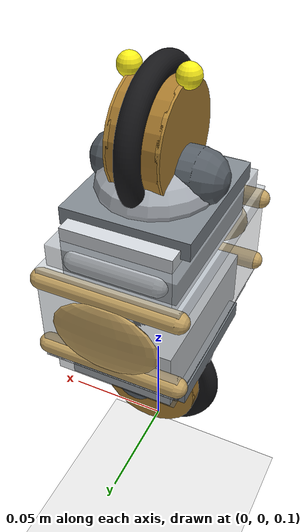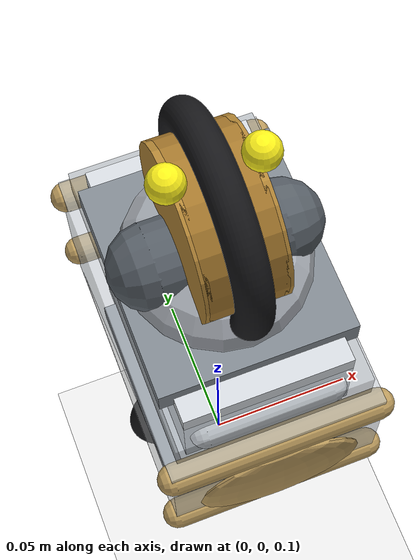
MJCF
<mujoco model="jumpwheelbot">
  <compiler angle="radian" coordinate="local"/>
  <option timestep="0.002" gravity="0 0 -9.81" integrator="RK4"
          cone="elliptic" iterations="100" tolerance="1e-10"/>

  <default>
    <geom rgba="0.7 0.7 0.75 1"/>
    <joint damping="0.001"/>
    <motor ctrllimited="true" ctrlrange="-0.5 0.5"/>

    <default class="terrain_collision">
      <geom priority="0" friction="0.80 0.0002 0.0001" condim="6"
            solref="0.008 1.0" solimp="0.90 0.98 0.001"/>
    </default>
    <default class="body_collision">
      <geom priority="1" friction="0.45 0.0001 0.0001" condim="6"
            solref="0.004 1.0" solimp="0.95 0.99 0.0005"/>
    </default>
    <default class="pitch_rocker_collision">
      <geom priority="2" friction="1.20 0.0005 0.0003" condim="6"
            solref="0.004 1.0" solimp="0.95 0.99 0.0005"/>
    </default>
    <default class="tyre_collision">
      <geom priority="2" friction="1.20 0.0005 0.0003" condim="6"
            solref="0.006 0.8" solimp="0.90 0.98 0.001"/>
    </default>
    <default class="visual">
      <geom contype="0" conaffinity="0" density="0" group="2"/>
    </default>
  </default>

  <asset>
    <mesh name="wheel_y_tire_mesh" file="wheel_tire.obj"/>
  </asset>

  <worldbody>
    <light pos="0 0 2"/>
    <geom name="floor" class="terrain_collision" type="plane" size="2 2 0.1" rgba="0.9 0.9 0.9 1"/>
    <body name="demo_obstacle_body" mocap="true" pos="0 3 -1"><geom name="demo_obstacle" class="terrain_collision" type="box" size="0.012 0.18 0.018" rgba="0.95 0.38 0.16 0" contype="0" conaffinity="0"/></body>
    <body name="demo_feature_1_body" mocap="true" pos="0 3 -1"><geom name="demo_feature_1" class="terrain_collision" type="box" size="0.024 0.18 0.024" rgba="0.95 0.38 0.16 0" contype="0" conaffinity="0"/></body>
    <body name="demo_feature_2_body" mocap="true" pos="0 3 -1"><geom name="demo_feature_2" class="terrain_collision" type="box" size="0.024 0.18 0.024" rgba="0.16 0.55 0.95 0" contype="0" conaffinity="0"/></body>
    <body name="demo_feature_3_body" mocap="true" pos="0 3 -1"><geom name="demo_feature_3" class="terrain_collision" type="box" size="0.024 0.18 0.024" rgba="0.28 0.78 0.38 0" contype="0" conaffinity="0"/></body>

    <body name="wheelbot" pos="0 0 0.2">
      <freejoint/>
      <geom name="unified_body_core" class="visual" type="box" pos="0 0 0" size="0.026 0.042 0.030" rgba="0.78 0.80 0.83 0.86"/>
      <geom name="unified_housing_shell" class="visual" type="box" pos="0 0 0" size="0.031 0.048 0.024" rgba="0.70 0.73 0.76 0.55"/>
      <geom name="central_roll_rocker_left_visual" class="visual" type="ellipsoid" pos="0 0.050 0" size="0.024 0.003 0.017" rgba="0.76 0.63 0.38 0.92"/>
      <geom name="central_roll_rocker_right_visual" class="visual" type="ellipsoid" pos="0 -0.050 0" size="0.024 0.003 0.017" rgba="0.76 0.63 0.38 0.92"/>

      <body name="wheel_x_end" pos="0 0 0">
        <joint name="q_jump" type="slide" axis="0 0 -1" limited="true" range="0 0.030" damping="1.0772" stiffness="6000" springref="0" armature="0" solreflimit="-218023 -88.5" solimplimit="0.95 0.99 0.001"/>
        <inertial pos="0 0 0.014" mass="0.215" diaginertia="0.000179 0.000179 0.000131"/>
        <geom name="upper_body_collision" class="body_collision" type="box" pos="0 0 0.018" size="0.026 0.030 0.014" density="0" rgba="0 0 0 0" group="3"/>
        <geom name="upper_roll_rocker_left" class="body_collision" type="capsule" fromto="-0.030 0.046 0.018 0.030 0.046 0.018" size="0.0045" density="0" rgba="0.76 0.63 0.38 0.95"/>
        <geom name="upper_roll_rocker_right" class="body_collision" type="capsule" fromto="-0.030 -0.046 0.018 0.030 -0.046 0.018" size="0.0045" density="0" rgba="0.76 0.63 0.38 0.95"/>
        <geom name="upper_pitch_rocker_front" class="pitch_rocker_collision" type="capsule" fromto="0.034 -0.036 0.018 0.034 0.036 0.018" size="0.0045" density="0" group="3" rgba="0.62 0.65 0.68 0.65"/>
        <geom name="upper_pitch_rocker_back" class="pitch_rocker_collision" type="capsule" fromto="-0.034 -0.036 0.018 -0.034 0.036 0.018" size="0.0045" density="0" group="3" rgba="0.62 0.65 0.68 0.65"/>
        <geom name="upper_body_core" class="visual" type="box" pos="0 0 0.026" size="0.024 0.039 0.014" rgba="0.82 0.84 0.86 0.92"/>
        <geom name="upper_housing_shell" class="visual" type="box" pos="0 0 0.022" size="0.028 0.044 0.012" rgba="0.58 0.61 0.64 0.55"/>
        <geom name="housing_top_front" class="visual" type="capsule" fromto="-0.018 0.039 0.026 0.018 0.039 0.026" size="0.0045" rgba="0.9 0.91 0.92 1"/>
        <geom name="housing_top_back" class="visual" type="capsule" fromto="-0.018 -0.039 0.026 0.018 -0.039 0.026" size="0.0045" rgba="0.9 0.91 0.92 1"/>
        <geom name="sliding_piston_core" class="visual" type="box" pos="0 0 0.004" size="0.015 0.017 0.030" rgba="0.30 0.33 0.36 0.82"/>
        <geom name="sliding_piston_guide_left" class="visual" type="capsule" fromto="-0.014 0 -0.018 -0.014 0 0.024" size="0.002" rgba="0.16 0.18 0.20 0.26"/>
        <geom name="sliding_piston_guide_right" class="visual" type="capsule" fromto="0.014 0 -0.018 0.014 0 0.024" size="0.002" rgba="0.16 0.18 0.20 0.26"/>
        <geom name="upper_actuator_collar" class="visual" type="box" pos="0 0 0.040" size="0.028 0.032 0.004" rgba="0.50 0.53 0.56 1"/>
        <geom name="wheel_x_motor_bridge" class="visual" type="capsule" fromto="-0.018 0 0.052 0.018 0 0.052" size="0.012" rgba="0.34 0.37 0.40 1"/>
        <geom name="wheel_x_mount_fairing" class="visual" type="ellipsoid" pos="0 0 0.046" size="0.026 0.028 0.014" rgba="0.66 0.68 0.71 0.95"/>

        <body name="wheel_x" pos="0 0 0.066">
          <inertial pos="0 0 0" mass="0.129" diaginertia="0.000120 0.000063 0.000063"/>
          <joint name="q_wheel_x" type="hinge" axis="1 0 0" damping="0.00001"/>
          <geom name="wheel_x_geom" class="tyre_collision" type="mesh" mesh="wheel_y_tire_mesh" euler="0 0 1.57079632679" density="0" rgba="0.09 0.09 0.1 1"/>
          <geom name="wheel_x_hub" class="visual" type="cylinder" fromto="-0.008 0 0 0.008 0 0" size="0.013" rgba="0.20 0.21 0.22 1"/>
          <geom name="wheel_x_inner_ring" class="visual" type="cylinder" fromto="-0.0105 0 0 0.0105 0 0" size="0.024" rgba="0.66 0.48 0.18 1"/>
          <geom name="wheel_x_face_left" class="visual" type="cylinder" pos="-0.0105 0 0" euler="0 1.57079632679 0" size="0.024 0.001" rgba="0.72 0.54 0.22 1"/>
          <geom name="wheel_x_face_right" class="visual" type="cylinder" pos="0.0105 0 0" euler="0 1.57079632679 0" size="0.024 0.001" rgba="0.72 0.54 0.22 1"/>
          <geom name="wheel_x_rotation_dot_left" class="visual" type="sphere" pos="-0.012 0 0.026" size="0.005" rgba="1.0 0.95 0.10 1"/>
          <geom name="wheel_x_rotation_dot_right" class="visual" type="sphere" pos="0.012 0 0.026" size="0.005" rgba="1.0 0.95 0.10 1"/>
        </body>
      </body>

      <body name="wheel_y_end" pos="0 0 0">
        <inertial pos="0 0 -0.014" mass="0.215" diaginertia="0.000179 0.000179 0.000131"/>
        <geom name="lower_body_collision" class="body_collision" type="box" pos="0 0 -0.018" size="0.026 0.030 0.014" density="0" rgba="0 0 0 0" group="3"/>
        <geom name="lower_roll_rocker_left" class="body_collision" type="capsule" fromto="-0.030 0.046 -0.018 0.030 0.046 -0.018" size="0.0045" density="0" rgba="0.76 0.63 0.38 0.95"/>
        <geom name="lower_roll_rocker_right" class="body_collision" type="capsule" fromto="-0.030 -0.046 -0.018 0.030 -0.046 -0.018" size="0.0045" density="0" rgba="0.76 0.63 0.38 0.95"/>
        <geom name="lower_pitch_rocker_front" class="pitch_rocker_collision" type="capsule" fromto="0.034 -0.036 -0.018 0.034 0.036 -0.018" size="0.0045" density="0" group="3" rgba="0.62 0.65 0.68 0.65"/>
        <geom name="lower_pitch_rocker_back" class="pitch_rocker_collision" type="capsule" fromto="-0.034 -0.036 -0.018 -0.034 0.036 -0.018" size="0.0045" density="0" group="3" rgba="0.62 0.65 0.68 0.65"/>
        <geom name="lower_body_core" class="visual" type="box" pos="0 0 -0.026" size="0.024 0.039 0.014" rgba="0.82 0.84 0.86 0.92"/>
        <geom name="lower_housing_shell" class="visual" type="box" pos="0 0 -0.022" size="0.028 0.044 0.012" rgba="0.58 0.61 0.64 0.55"/>
        <geom name="housing_bottom_front" class="visual" type="capsule" fromto="-0.018 0.039 -0.026 0.018 0.039 -0.026" size="0.0045" rgba="0.9 0.91 0.92 1"/>
        <geom name="housing_bottom_back" class="visual" type="capsule" fromto="-0.018 -0.039 -0.026 0.018 -0.039 -0.026" size="0.0045" rgba="0.9 0.91 0.92 1"/>
        <geom name="fixed_outer_sleeve" class="visual" type="box" pos="0 0 -0.004" size="0.031 0.048 0.020" rgba="0.88 0.89 0.90 0.50"/>
        <geom name="lower_actuator_collar" class="visual" type="box" pos="0 0 -0.040" size="0.028 0.032 0.004" rgba="0.50 0.53 0.56 1"/>
        <geom name="lower_piston_guide_left" class="visual" type="capsule" fromto="-0.014 0 -0.024 -0.014 0 0.018" size="0.002" rgba="0.16 0.18 0.20 0.20"/>
        <geom name="lower_piston_guide_right" class="visual" type="capsule" fromto="0.014 0 -0.024 0.014 0 0.018" size="0.002" rgba="0.16 0.18 0.20 0.20"/>
        <geom name="wheel_y_motor_bridge" class="visual" type="capsule" fromto="0 -0.018 -0.052 0 0.018 -0.052" size="0.012" rgba="0.34 0.37 0.40 1"/>
        <geom name="wheel_y_mount_fairing" class="visual" type="ellipsoid" pos="0 0 -0.046" size="0.028 0.026 0.014" rgba="0.66 0.68 0.71 0.95"/>

        <body name="wheel_y" pos="0 0 -0.066">
          <inertial pos="0 0 0" mass="0.129" diaginertia="0.000063 0.000120 0.000063"/>
          <joint name="q_wheel_y" type="hinge" axis="0 1 0" damping="0.00001"/>
          <geom name="wheel_y_geom" class="tyre_collision" type="mesh" mesh="wheel_y_tire_mesh" density="0" rgba="0.09 0.09 0.1 1"/>
          <geom name="wheel_y_hub" class="visual" type="cylinder" fromto="0 -0.008 0 0 0.008 0" size="0.013" rgba="0.20 0.21 0.22 1"/>
          <geom name="wheel_y_inner_ring" class="visual" type="cylinder" fromto="0 -0.0105 0 0 0.0105 0" size="0.024" rgba="0.66 0.48 0.18 1"/>
          <geom name="wheel_y_face_left" class="visual" type="cylinder" pos="0 -0.0105 0" euler="1.57079632679 0 0" size="0.024 0.001" rgba="0.72 0.54 0.22 1"/>
          <geom name="wheel_y_face_right" class="visual" type="cylinder" pos="0 0.0105 0" euler="1.57079632679 0 0" size="0.024 0.001" rgba="0.72 0.54 0.22 1"/>
          <geom name="wheel_y_rotation_dot_left" class="visual" type="sphere" pos="0 -0.012 0.026" size="0.005" rgba="1.0 0.95 0.10 1"/>
          <geom name="wheel_y_rotation_dot_right" class="visual" type="sphere" pos="0 0.012 0.026" size="0.005" rgba="1.0 0.95 0.10 1"/>
        </body>
      </body>

    </body>
  </worldbody>

  <actuator>
    <motor name="tau_wheel_y" joint="q_wheel_y"/>
    <motor name="tau_wheel_x" joint="q_wheel_x"/>
    <motor name="tau_jump" joint="q_jump"
           ctrllimited="true" ctrlrange="-120 120"
           forcelimited="true" forcerange="-120 120"/>
  </actuator>

  <contact>
    <exclude body1="wheel_x_end" body2="wheel_y_end"/>
    <exclude body1="wheel_y_end" body2="wheel_y"/>
    <exclude body1="wheel_y_end" body2="wheel_x"/>
    <exclude body1="wheel_x_end" body2="wheel_y"/>
    <exclude body1="wheel_x_end" body2="wheel_x"/>
    <exclude body1="wheel_y" body2="wheel_x"/>
  </contact>
</mujoco>
